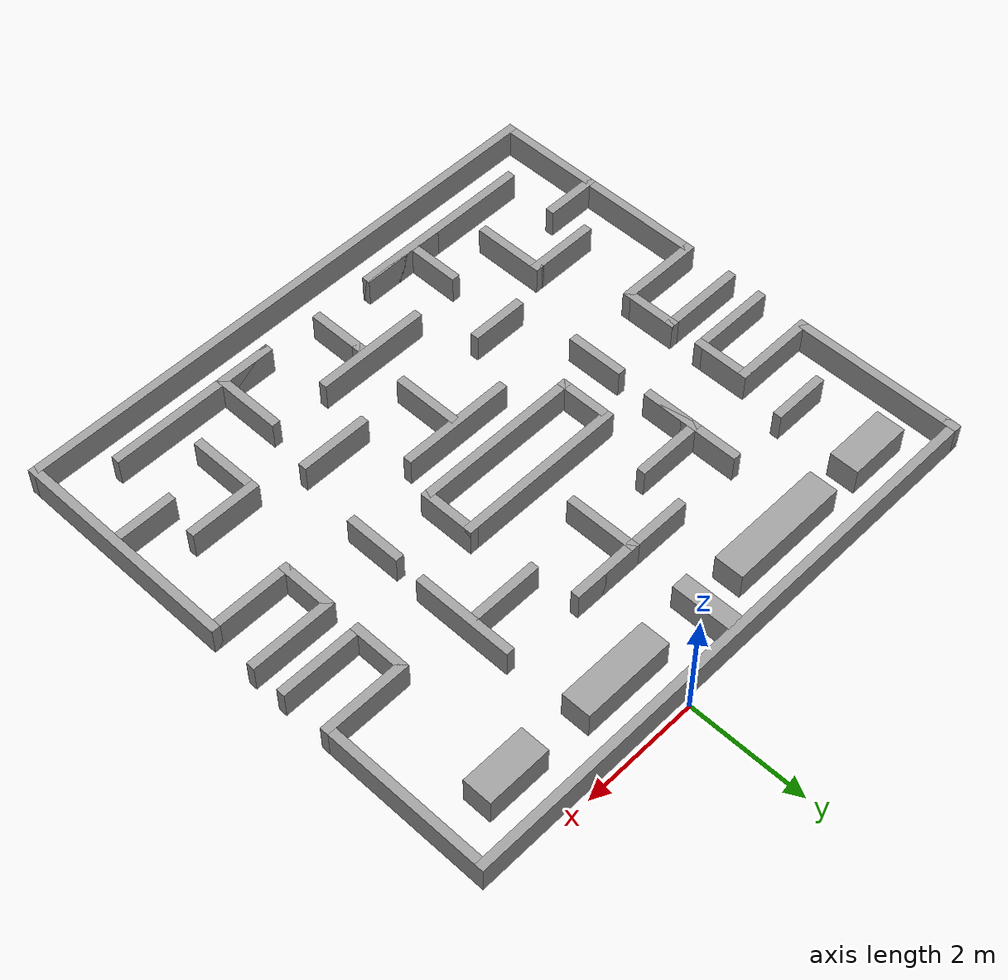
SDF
<?xml version='1.0'?>
<sdf version='1.6'>
  <model name='maze'>
    <pose frame=''>-1.235 -4.76 0 0 -0 0</pose>
    <link name='Wall_10'>
      <collision name='Wall_10_Collision'>
        <geometry>
          <box>
            <size>1.5 0.15 0.5</size>
          </box>
        </geometry>
      </collision>
      <visual name='Wall_10_Visual'>
        <geometry>
          <box>
            <size>1.5 0.15 0.5</size>
          </box>
        </geometry>
        <material>
          <script>
            <uri>file://media/materials/scripts/gazebo.material</uri>
            <name>Gazebo/Grey</name>
          </script>
          <ambient>1 1 1 1</ambient>
        </material>
        <meta>
          <layer>0</layer>
        </meta>
      </visual>
      <pose frame=''>4.25 1.65 0 0 -0 3.14159</pose>
    </link>
    <link name='Wall_100'>
      <collision name='Wall_100_Collision'>
        <geometry>
          <box>
            <size>1.25 0.15 0.5</size>
          </box>
        </geometry>
      </collision>
      <visual name='Wall_100_Visual'>
        <geometry>
          <box>
            <size>1.25 0.15 0.5</size>
          </box>
        </geometry>
        <material>
          <script>
            <uri>file://media/materials/scripts/gazebo.material</uri>
            <name>Gazebo/Grey</name>
          </script>
          <ambient>1 1 1 1</ambient>
        </material>
        <meta>
          <layer>0</layer>
        </meta>
      </visual>
      <pose frame=''>3.49245 -2.0558 0 0 -0 3.14159</pose>
    </link>
    <link name='Wall_104'>
      <collision name='Wall_104_Collision'>
        <geometry>
          <box>
            <size>1.25 0.15 0.5</size>
          </box>
        </geometry>
      </collision>
      <visual name='Wall_104_Visual'>
        <geometry>
          <box>
            <size>1.25 0.15 0.5</size>
          </box>
        </geometry>
        <material>
          <script>
            <uri>file://media/materials/scripts/gazebo.material</uri>
            <name>Gazebo/Grey</name>
          </script>
          <ambient>1 1 1 1</ambient>
        </material>
        <meta>
          <layer>0</layer>
        </meta>
      </visual>
      <pose frame=''>2.94245 -2.6058 0 0 -0 -1.5708</pose>
    </link>
    <link name='Wall_106'>
      <collision name='Wall_106_Collision'>
        <geometry>
          <box>
            <size>1 0.15 0.5</size>
          </box>
        </geometry>
      </collision>
      <visual name='Wall_106_Visual'>
        <geometry>
          <box>
            <size>1 0.15 0.5</size>
          </box>
        </geometry>
        <material>
          <script>
            <uri>file://media/materials/scripts/gazebo.material</uri>
            <name>Gazebo/Grey</name>
          </script>
          <ambient>1 1 1 1</ambient>
        </material>
        <meta>
          <layer>0</layer>
        </meta>
      </visual>
      <pose frame=''>-1.79082 -1.75694 0 0 -0 0</pose>
    </link>
    <link name='Wall_108'>
      <collision name='Wall_108_Collision'>
        <geometry>
          <box>
            <size>1.25 0.15 0.5</size>
          </box>
        </geometry>
      </collision>
      <visual name='Wall_108_Visual'>
        <geometry>
          <box>
            <size>1.25 0.15 0.5</size>
          </box>
        </geometry>
        <material>
          <script>
            <uri>file://media/materials/scripts/gazebo.material</uri>
            <name>Gazebo/Grey</name>
          </script>
          <ambient>1 1 1 1</ambient>
        </material>
        <meta>
          <layer>0</layer>
        </meta>
      </visual>
      <pose frame=''>1.58637 -1.79211 0 0 -0 0</pose>
    </link>
    <link name='Wall_11'>
      <collision name='Wall_11_Collision'>
        <geometry>
          <box>
            <size>1 0.15 0.5</size>
          </box>
        </geometry>
      </collision>
      <visual name='Wall_11_Visual'>
        <geometry>
          <box>
            <size>1 0.15 0.5</size>
          </box>
        </geometry>
        <material>
          <script>
            <uri>file://media/materials/scripts/gazebo.material</uri>
            <name>Gazebo/Grey</name>
          </script>
          <ambient>1 1 1 1</ambient>
        </material>
        <meta>
          <layer>0</layer>
        </meta>
      </visual>
      <pose frame=''>3.575 1.225 0 0 -0 -1.5708</pose>
    </link>
    <link name='Wall_110'>
      <collision name='Wall_110_Collision'>
        <geometry>
          <box>
            <size>3.25 0.15 0.5</size>
          </box>
        </geometry>
      </collision>
      <visual name='Wall_110_Visual'>
        <geometry>
          <box>
            <size>3.25 0.15 0.5</size>
          </box>
        </geometry>
        <material>
          <script>
            <uri>file://media/materials/scripts/gazebo.material</uri>
            <name>Gazebo/Grey</name>
          </script>
          <ambient>1 1 1 1</ambient>
        </material>
        <meta>
          <layer>0</layer>
        </meta>
      </visual>
      <pose frame=''>-2.56439 -3.761 0 0 -0 0</pose>
    </link>
    <link name='Wall_111'>
      <collision name='Wall_111_Collision'>
        <geometry>
          <box>
            <size>1.5 0.15 0.5</size>
          </box>
        </geometry>
      </collision>
      <visual name='Wall_111_Visual'>
        <geometry>
          <box>
            <size>1.5 0.15 0.5</size>
          </box>
        </geometry>
        <material>
          <script>
            <uri>file://media/materials/scripts/gazebo.material</uri>
            <name>Gazebo/Grey</name>
          </script>
          <ambient>1 1 1 1</ambient>
        </material>
        <meta>
          <layer>0</layer>
        </meta>
      </visual>
      <pose frame=''>-1.68939 -3.761 0 0 -0 3.14159</pose>
    </link>
    <link name='Wall_113'>
      <collision name='Wall_113_Collision'>
        <geometry>
          <box>
            <size>1 0.15 0.5</size>
          </box>
        </geometry>
      </collision>
      <visual name='Wall_113_Visual'>
        <geometry>
          <box>
            <size>1 0.15 0.5</size>
          </box>
        </geometry>
        <material>
          <script>
            <uri>file://media/materials/scripts/gazebo.material</uri>
            <name>Gazebo/Grey</name>
          </script>
          <ambient>1 1 1 1</ambient>
        </material>
        <meta>
          <layer>0</layer>
        </meta>
      </visual>
      <pose frame=''>-1.95213 -3.30084 0 0 -0 1.5708</pose>
    </link>
    <link name='Wall_115'>
      <collision name='Wall_115_Collision'>
        <geometry>
          <box>
            <size>2 0.15 0.5</size>
          </box>
        </geometry>
      </collision>
      <visual name='Wall_115_Visual'>
        <geometry>
          <box>
            <size>2 0.15 0.5</size>
          </box>
        </geometry>
        <material>
          <script>
            <uri>file://media/materials/scripts/gazebo.material</uri>
            <name>Gazebo/Grey</name>
          </script>
          <ambient>1 1 1 1</ambient>
        </material>
        <meta>
          <layer>0</layer>
        </meta>
      </visual>
      <pose frame=''>-0.042679 -2.70623 0 0 -0 0</pose>
    </link>
    <link name='Wall_118'>
      <collision name='Wall_118_Collision'>
        <geometry>
          <box>
            <size>1 0.15 0.5</size>
          </box>
        </geometry>
      </collision>
      <visual name='Wall_118_Visual'>
        <geometry>
          <box>
            <size>1 0.15 0.5</size>
          </box>
        </geometry>
        <material>
          <script>
            <uri>file://media/materials/scripts/gazebo.material</uri>
            <name>Gazebo/Grey</name>
          </script>
          <ambient>1 1 1 1</ambient>
        </material>
        <meta>
          <layer>0</layer>
        </meta>
      </visual>
      <pose frame=''>0.067929 -3.29949 0 0 -0 1.5708</pose>
    </link>
    <link name='Wall_12'>
      <collision name='Wall_12_Collision'>
        <geometry>
          <box>
            <size>1.5 0.15 0.5</size>
          </box>
        </geometry>
      </collision>
      <visual name='Wall_12_Visual'>
        <geometry>
          <box>
            <size>1.5 0.15 0.5</size>
          </box>
        </geometry>
        <material>
          <script>
            <uri>file://media/materials/scripts/gazebo.material</uri>
            <name>Gazebo/Grey</name>
          </script>
          <ambient>1 1 1 1</ambient>
        </material>
        <meta>
          <layer>0</layer>
        </meta>
      </visual>
      <pose frame=''>4.25 0.8 0 0 -0 0</pose>
    </link>
    <link name='Wall_120'>
      <collision name='Wall_120_Collision'>
        <geometry>
          <box>
            <size>0.15 0.15 0.5</size>
          </box>
        </geometry>
      </collision>
      <visual name='Wall_120_Visual'>
        <geometry>
          <box>
            <size>0.15 0.15 0.5</size>
          </box>
        </geometry>
        <material>
          <script>
            <uri>file://media/materials/scripts/gazebo.material</uri>
            <name>Gazebo/Grey</name>
          </script>
          <ambient>1 1 1 1</ambient>
        </material>
        <meta>
          <layer>0</layer>
        </meta>
      </visual>
      <pose frame=''>0.067929 -2.85691 0 0 -0 0</pose>
    </link>
    <link name='Wall_121'>
      <collision name='Wall_121_Collision'>
        <geometry>
          <box>
            <size>0.15 0.15 0.5</size>
          </box>
        </geometry>
      </collision>
      <visual name='Wall_121_Visual'>
        <geometry>
          <box>
            <size>0.15 0.15 0.5</size>
          </box>
        </geometry>
        <material>
          <script>
            <uri>file://media/materials/scripts/gazebo.material</uri>
            <name>Gazebo/Grey</name>
          </script>
          <ambient>1 1 1 1</ambient>
        </material>
        <meta>
          <layer>0</layer>
        </meta>
      </visual>
      <pose frame=''>0.067929 -2.85691 0 0 -0 0</pose>
    </link>
    <link name='Wall_123'>
      <collision name='Wall_123_Collision'>
        <geometry>
          <box>
            <size>1.25 0.15 0.5</size>
          </box>
        </geometry>
      </collision>
      <visual name='Wall_123_Visual'>
        <geometry>
          <box>
            <size>1.25 0.15 0.5</size>
          </box>
        </geometry>
        <material>
          <script>
            <uri>file://media/materials/scripts/gazebo.material</uri>
            <name>Gazebo/Grey</name>
          </script>
          <ambient>1 1 1 1</ambient>
        </material>
        <meta>
          <layer>0</layer>
        </meta>
      </visual>
      <pose frame=''>1.93292 -3.27381 0 0 -0 -1.5708</pose>
    </link>
    <link name='Wall_124'>
      <collision name='Wall_124_Collision'>
        <geometry>
          <box>
            <size>1 0.15 0.5</size>
          </box>
        </geometry>
      </collision>
      <visual name='Wall_124_Visual'>
        <geometry>
          <box>
            <size>1 0.15 0.5</size>
          </box>
        </geometry>
        <material>
          <script>
            <uri>file://media/materials/scripts/gazebo.material</uri>
            <name>Gazebo/Grey</name>
          </script>
          <ambient>1 1 1 1</ambient>
        </material>
        <meta>
          <layer>0</layer>
        </meta>
      </visual>
      <pose frame=''>1.50792 -3.82381 0 0 -0 3.14159</pose>
    </link>
    <link name='Wall_125'>
      <collision name='Wall_125_Collision'>
        <geometry>
          <box>
            <size>3 0.15 0.5</size>
          </box>
        </geometry>
      </collision>
      <visual name='Wall_125_Visual'>
        <geometry>
          <box>
            <size>3 0.15 0.5</size>
          </box>
        </geometry>
        <material>
          <script>
            <uri>file://media/materials/scripts/gazebo.material</uri>
            <name>Gazebo/Grey</name>
          </script>
          <ambient>1 1 1 1</ambient>
        </material>
        <meta>
          <layer>0</layer>
        </meta>
      </visual>
      <pose frame=''>2.50792 -3.82381 0 0 -0 0</pose>
    </link>
    <link name='Wall_127'>
      <collision name='Wall_127_Collision'>
        <geometry>
          <box>
            <size>1.6 0.5 0.5</size>
          </box>
        </geometry>
      </collision>
      <visual name='Wall_127_Visual'>
        <geometry>
          <box>
            <size>1.6 0.5 0.5</size>
          </box>
        </geometry>
        <material>
          <script>
            <uri>file://media/materials/scripts/gazebo.material</uri>
            <name>Gazebo/Grey</name>
          </script>
          <ambient>1 1 1 1</ambient>
        </material>
        <meta>
          <layer>0</layer>
        </meta>
      </visual>
      <pose frame=''>1.6036 3.75626 0 0 -0 3.14159</pose>
    </link>
    <link name='Wall_129'>
      <collision name='Wall_129_Collision'>
        <geometry>
          <box>
            <size>1.1 0.5 0.5</size>
          </box>
        </geometry>
      </collision>
      <visual name='Wall_129_Visual'>
        <geometry>
          <box>
            <size>1.1 0.5 0.5</size>
          </box>
        </geometry>
        <material>
          <script>
            <uri>file://media/materials/scripts/gazebo.material</uri>
            <name>Gazebo/Grey</name>
          </script>
          <ambient>1 1 1 1</ambient>
        </material>
        <meta>
          <layer>0</layer>
        </meta>
      </visual>
      <pose frame=''>3.69461 3.72056 0 0 -0 0</pose>
    </link>
    <link name='Wall_15'>
      <collision name='Wall_15_Collision'>
        <geometry>
          <box>
            <size>3 0.15 0.5</size>
          </box>
        </geometry>
      </collision>
      <visual name='Wall_15_Visual'>
        <geometry>
          <box>
            <size>3 0.15 0.5</size>
          </box>
        </geometry>
        <material>
          <script>
            <uri>file://media/materials/scripts/gazebo.material</uri>
            <name>Gazebo/Grey</name>
          </script>
          <ambient>1 1 1 1</ambient>
        </material>
        <meta>
          <layer>0</layer>
        </meta>
      </visual>
      <pose frame=''>-4.925 3.075 0 0 -0 -1.5708</pose>
    </link>
    <link name='Wall_16'>
      <collision name='Wall_16_Collision'>
        <geometry>
          <box>
            <size>1.5 0.15 0.5</size>
          </box>
        </geometry>
      </collision>
      <visual name='Wall_16_Visual'>
        <geometry>
          <box>
            <size>1.5 0.15 0.5</size>
          </box>
        </geometry>
        <material>
          <script>
            <uri>file://media/materials/scripts/gazebo.material</uri>
            <name>Gazebo/Grey</name>
          </script>
          <ambient>1 1 1 1</ambient>
        </material>
        <meta>
          <layer>0</layer>
        </meta>
      </visual>
      <pose frame=''>-4.25 1.65 0 0 -0 0</pose>
    </link>
    <link name='Wall_19'>
      <collision name='Wall_19_Collision'>
        <geometry>
          <box>
            <size>1 0.15 0.5</size>
          </box>
        </geometry>
      </collision>
      <visual name='Wall_19_Visual'>
        <geometry>
          <box>
            <size>1 0.15 0.5</size>
          </box>
        </geometry>
        <material>
          <script>
            <uri>file://media/materials/scripts/gazebo.material</uri>
            <name>Gazebo/Grey</name>
          </script>
          <ambient>1 1 1 1</ambient>
        </material>
        <meta>
          <layer>0</layer>
        </meta>
      </visual>
      <pose frame=''>-3.575 1.225 0 0 -0 -1.5708</pose>
    </link>
    <link name='Wall_20'>
      <collision name='Wall_20_Collision'>
        <geometry>
          <box>
            <size>1.5 0.15 0.5</size>
          </box>
        </geometry>
      </collision>
      <visual name='Wall_20_Visual'>
        <geometry>
          <box>
            <size>1.5 0.15 0.5</size>
          </box>
        </geometry>
        <material>
          <script>
            <uri>file://media/materials/scripts/gazebo.material</uri>
            <name>Gazebo/Grey</name>
          </script>
          <ambient>1 1 1 1</ambient>
        </material>
        <meta>
          <layer>0</layer>
        </meta>
      </visual>
      <pose frame=''>-4.25 0.8 0 0 -0 3.14159</pose>
    </link>
    <link name='Wall_23'>
      <collision name='Wall_23_Collision'>
        <geometry>
          <box>
            <size>1.5 0.15 0.5</size>
          </box>
        </geometry>
      </collision>
      <visual name='Wall_23_Visual'>
        <geometry>
          <box>
            <size>1.5 0.15 0.5</size>
          </box>
        </geometry>
        <material>
          <script>
            <uri>file://media/materials/scripts/gazebo.material</uri>
            <name>Gazebo/Grey</name>
          </script>
          <ambient>1 1 1 1</ambient>
        </material>
        <meta>
          <layer>0</layer>
        </meta>
      </visual>
      <pose frame=''>-4.25 0.2 0 0 -0 0</pose>
    </link>
    <link name='Wall_24'>
      <collision name='Wall_24_Collision'>
        <geometry>
          <box>
            <size>1 0.15 0.5</size>
          </box>
        </geometry>
      </collision>
      <visual name='Wall_24_Visual'>
        <geometry>
          <box>
            <size>1 0.15 0.5</size>
          </box>
        </geometry>
        <material>
          <script>
            <uri>file://media/materials/scripts/gazebo.material</uri>
            <name>Gazebo/Grey</name>
          </script>
          <ambient>1 1 1 1</ambient>
        </material>
        <meta>
          <layer>0</layer>
        </meta>
      </visual>
      <pose frame=''>-3.575 -0.225 0 0 -0 -1.5708</pose>
    </link>
    <link name='Wall_25'>
      <collision name='Wall_25_Collision'>
        <geometry>
          <box>
            <size>1.5 0.15 0.5</size>
          </box>
        </geometry>
      </collision>
      <visual name='Wall_25_Visual'>
        <geometry>
          <box>
            <size>1.5 0.15 0.5</size>
          </box>
        </geometry>
        <material>
          <script>
            <uri>file://media/materials/scripts/gazebo.material</uri>
            <name>Gazebo/Grey</name>
          </script>
          <ambient>1 1 1 1</ambient>
        </material>
        <meta>
          <layer>0</layer>
        </meta>
      </visual>
      <pose frame=''>-4.25 -0.65 0 0 -0 3.14159</pose>
    </link>
    <link name='Wall_26'>
      <collision name='Wall_26_Collision'>
        <geometry>
          <box>
            <size>4 0.15 0.5</size>
          </box>
        </geometry>
      </collision>
      <visual name='Wall_26_Visual'>
        <geometry>
          <box>
            <size>4 0.15 0.5</size>
          </box>
        </geometry>
        <material>
          <script>
            <uri>file://media/materials/scripts/gazebo.material</uri>
            <name>Gazebo/Grey</name>
          </script>
          <ambient>1 1 1 1</ambient>
        </material>
        <meta>
          <layer>0</layer>
        </meta>
      </visual>
      <pose frame=''>-4.925 -2.575 0 0 -0 -1.5708</pose>
    </link>
    <link name='Wall_29'>
      <collision name='Wall_29_Collision'>
        <geometry>
          <box>
            <size>1.5 0.15 0.5</size>
          </box>
        </geometry>
      </collision>
      <visual name='Wall_29_Visual'>
        <geometry>
          <box>
            <size>1.5 0.15 0.5</size>
          </box>
        </geometry>
        <material>
          <script>
            <uri>file://media/materials/scripts/gazebo.material</uri>
            <name>Gazebo/Grey</name>
          </script>
          <ambient>1 1 1 1</ambient>
        </material>
        <meta>
          <layer>0</layer>
        </meta>
      </visual>
      <pose frame=''>4.25 0.2 0 0 -0 3.14159</pose>
    </link>
    <link name='Wall_30'>
      <collision name='Wall_30_Collision'>
        <geometry>
          <box>
            <size>1 0.15 0.5</size>
          </box>
        </geometry>
      </collision>
      <visual name='Wall_30_Visual'>
        <geometry>
          <box>
            <size>1 0.15 0.5</size>
          </box>
        </geometry>
        <material>
          <script>
            <uri>file://media/materials/scripts/gazebo.material</uri>
            <name>Gazebo/Grey</name>
          </script>
          <ambient>1 1 1 1</ambient>
        </material>
        <meta>
          <layer>0</layer>
        </meta>
      </visual>
      <pose frame=''>3.575 -0.225 0 0 -0 -1.5708</pose>
    </link>
    <link name='Wall_31'>
      <collision name='Wall_31_Collision'>
        <geometry>
          <box>
            <size>1.5 0.15 0.5</size>
          </box>
        </geometry>
      </collision>
      <visual name='Wall_31_Visual'>
        <geometry>
          <box>
            <size>1.5 0.15 0.5</size>
          </box>
        </geometry>
        <material>
          <script>
            <uri>file://media/materials/scripts/gazebo.material</uri>
            <name>Gazebo/Grey</name>
          </script>
          <ambient>1 1 1 1</ambient>
        </material>
        <meta>
          <layer>0</layer>
        </meta>
      </visual>
      <pose frame=''>4.25 -0.65 0 0 -0 0</pose>
    </link>
    <link name='Wall_32'>
      <collision name='Wall_32_Collision'>
        <geometry>
          <box>
            <size>4 0.15 0.5</size>
          </box>
        </geometry>
      </collision>
      <visual name='Wall_32_Visual'>
        <geometry>
          <box>
            <size>4 0.15 0.5</size>
          </box>
        </geometry>
        <material>
          <script>
            <uri>file://media/materials/scripts/gazebo.material</uri>
            <name>Gazebo/Grey</name>
          </script>
          <ambient>1 1 1 1</ambient>
        </material>
        <meta>
          <layer>0</layer>
        </meta>
      </visual>
      <pose frame=''>4.925 -2.575 0 0 -0 -1.5708</pose>
    </link>
    <link name='Wall_33'>
      <collision name='Wall_33_Collision'>
        <geometry>
          <box>
            <size>10 0.15 0.5</size>
          </box>
        </geometry>
      </collision>
      <visual name='Wall_33_Visual'>
        <geometry>
          <box>
            <size>10 0.15 0.5</size>
          </box>
        </geometry>
        <material>
          <script>
            <uri>file://media/materials/scripts/gazebo.material</uri>
            <name>Gazebo/Grey</name>
          </script>
          <ambient>1 1 1 1</ambient>
        </material>
        <meta>
          <layer>0</layer>
        </meta>
      </visual>
      <pose frame=''>-0 -4.5 0 0 -0 3.14159</pose>
    </link>
    <link name='Wall_36'>
      <collision name='Wall_36_Collision'>
        <geometry>
          <box>
            <size>1.15 0.3 0.5</size>
          </box>
        </geometry>
      </collision>
      <visual name='Wall_36_Visual'>
        <geometry>
          <box>
            <size>1.15 0.3 0.5</size>
          </box>
        </geometry>
        <material>
          <script>
            <uri>file://media/materials/scripts/gazebo.material</uri>
            <name>Gazebo/Grey</name>
          </script>
          <ambient>1 1 1 1</ambient>
        </material>
        <meta>
          <layer>0</layer>
        </meta>
      </visual>
      <pose frame=''>-0.075 3.992 0 0 -0 -1.5708</pose>
    </link>
    <link name='Wall_49'>
      <collision name='Wall_49_Collision'>
        <geometry>
          <box>
            <size>0.75 0.15 0.5</size>
          </box>
        </geometry>
      </collision>
      <visual name='Wall_49_Visual'>
        <geometry>
          <box>
            <size>0.75 0.15 0.5</size>
          </box>
        </geometry>
        <material>
          <script>
            <uri>file://media/materials/scripts/gazebo.material</uri>
            <name>Gazebo/Grey</name>
          </script>
          <ambient>1 1 1 1</ambient>
        </material>
        <meta>
          <layer>0</layer>
        </meta>
      </visual>
      <pose frame=''>-4.925 4.2 0 0 -0 -1.5708</pose>
    </link>
    <link name='Wall_51'>
      <collision name='Wall_51_Collision'>
        <geometry>
          <box>
            <size>1.1 0.5 0.5</size>
          </box>
        </geometry>
      </collision>
      <visual name='Wall_51_Visual'>
        <geometry>
          <box>
            <size>1.1 0.5 0.5</size>
          </box>
        </geometry>
        <material>
          <script>
            <uri>file://media/materials/scripts/gazebo.material</uri>
            <name>Gazebo/Grey</name>
          </script>
          <ambient>1 1 1 1</ambient>
        </material>
        <meta>
          <layer>0</layer>
        </meta>
      </visual>
      <pose frame=''>-3.81917 3.77135 0 0 -0 0</pose>
    </link>
    <link name='Wall_53'>
      <collision name='Wall_53_Collision'>
        <geometry>
          <box>
            <size>2.1 0.5 0.5</size>
          </box>
        </geometry>
      </collision>
      <visual name='Wall_53_Visual'>
        <geometry>
          <box>
            <size>2.1 0.5 0.5</size>
          </box>
        </geometry>
        <material>
          <script>
            <uri>file://media/materials/scripts/gazebo.material</uri>
            <name>Gazebo/Grey</name>
          </script>
          <ambient>1 1 1 1</ambient>
        </material>
        <meta>
          <layer>0</layer>
        </meta>
      </visual>
      <pose frame=''>-1.76454 3.76381 0 0 -0 0</pose>
    </link>
    <link name='Wall_55'>
      <collision name='Wall_55_Collision'>
        <geometry>
          <box>
            <size>1 0.15 0.5</size>
          </box>
        </geometry>
      </collision>
      <visual name='Wall_55_Visual'>
        <geometry>
          <box>
            <size>1 0.15 0.5</size>
          </box>
        </geometry>
        <material>
          <script>
            <uri>file://media/materials/scripts/gazebo.material</uri>
            <name>Gazebo/Grey</name>
          </script>
          <ambient>1 1 1 1</ambient>
        </material>
        <meta>
          <layer>0</layer>
        </meta>
      </visual>
      <pose frame=''>-3.7875 2.51183 0 0 -0 3.14159</pose>
    </link>
    <link name='Wall_57'>
      <collision name='Wall_57_Collision'>
        <geometry>
          <box>
            <size>1.75 0.15 0.5</size>
          </box>
        </geometry>
      </collision>
      <visual name='Wall_57_Visual'>
        <geometry>
          <box>
            <size>1.75 0.15 0.5</size>
          </box>
        </geometry>
        <material>
          <script>
            <uri>file://media/materials/scripts/gazebo.material</uri>
            <name>Gazebo/Grey</name>
          </script>
          <ambient>1 1 1 1</ambient>
        </material>
        <meta>
          <layer>0</layer>
        </meta>
      </visual>
      <pose frame=''>-2.29464 1.71788 0 0 -0 -1.5708</pose>
    </link>
    <link name='Wall_58'>
      <collision name='Wall_58_Collision'>
        <geometry>
          <box>
            <size>1 0.15 0.5</size>
          </box>
        </geometry>
      </collision>
      <visual name='Wall_58_Visual'>
        <geometry>
          <box>
            <size>1 0.15 0.5</size>
          </box>
        </geometry>
        <material>
          <script>
            <uri>file://media/materials/scripts/gazebo.material</uri>
            <name>Gazebo/Grey</name>
          </script>
          <ambient>1 1 1 1</ambient>
        </material>
        <meta>
          <layer>0</layer>
        </meta>
      </visual>
      <pose frame=''>-2.29464 1.34288 0 0 -0 1.5708</pose>
    </link>
    <link name='Wall_59'>
      <collision name='Wall_59_Collision'>
        <geometry>
          <box>
            <size>1.25 0.15 0.5</size>
          </box>
        </geometry>
      </collision>
      <visual name='Wall_59_Visual'>
        <geometry>
          <box>
            <size>1.25 0.15 0.5</size>
          </box>
        </geometry>
        <material>
          <script>
            <uri>file://media/materials/scripts/gazebo.material</uri>
            <name>Gazebo/Grey</name>
          </script>
          <ambient>1 1 1 1</ambient>
        </material>
        <meta>
          <layer>0</layer>
        </meta>
      </visual>
      <pose frame=''>-1.74464 1.76788 0 0 -0 0</pose>
    </link>
    <link name='Wall_65'>
      <collision name='Wall_65_Collision'>
        <geometry>
          <box>
            <size>1.25 0.15 0.5</size>
          </box>
        </geometry>
      </collision>
      <visual name='Wall_65_Visual'>
        <geometry>
          <box>
            <size>1.25 0.15 0.5</size>
          </box>
        </geometry>
        <material>
          <script>
            <uri>file://media/materials/scripts/gazebo.material</uri>
            <name>Gazebo/Grey</name>
          </script>
          <ambient>1 1 1 1</ambient>
        </material>
        <meta>
          <layer>0</layer>
        </meta>
      </visual>
      <pose frame=''>1.7478 1.79998 0 0 -0 0</pose>
    </link>
    <link name='Wall_69'>
      <collision name='Wall_69_Collision'>
        <geometry>
          <box>
            <size>1.75 0.15 0.5</size>
          </box>
        </geometry>
      </collision>
      <visual name='Wall_69_Visual'>
        <geometry>
          <box>
            <size>1.75 0.15 0.5</size>
          </box>
        </geometry>
        <material>
          <script>
            <uri>file://media/materials/scripts/gazebo.material</uri>
            <name>Gazebo/Grey</name>
          </script>
          <ambient>1 1 1 1</ambient>
        </material>
        <meta>
          <layer>0</layer>
        </meta>
      </visual>
      <pose frame=''>2.39412 1.6779 0 0 -0 -1.5708</pose>
    </link>
    <link name='Wall_74'>
      <collision name='Wall_74_Collision'>
        <geometry>
          <box>
            <size>2.25 0.15 0.5</size>
          </box>
        </geometry>
      </collision>
      <visual name='Wall_74_Visual'>
        <geometry>
          <box>
            <size>2.25 0.15 0.5</size>
          </box>
        </geometry>
        <material>
          <script>
            <uri>file://media/materials/scripts/gazebo.material</uri>
            <name>Gazebo/Grey</name>
          </script>
          <ambient>1 1 1 1</ambient>
        </material>
        <meta>
          <layer>0</layer>
        </meta>
      </visual>
      <pose frame=''>-0.011937 2.54436 0 0 -0 0</pose>
    </link>
    <link name='Wall_75'>
      <collision name='Wall_75_Collision'>
        <geometry>
          <box>
            <size>1.25 0.15 0.5</size>
          </box>
        </geometry>
      </collision>
      <visual name='Wall_75_Visual'>
        <geometry>
          <box>
            <size>1.25 0.15 0.5</size>
          </box>
        </geometry>
        <material>
          <script>
            <uri>file://media/materials/scripts/gazebo.material</uri>
            <name>Gazebo/Grey</name>
          </script>
          <ambient>1 1 1 1</ambient>
        </material>
        <meta>
          <layer>0</layer>
        </meta>
      </visual>
      <pose frame=''>0.488063 2.54436 0 0 -0 3.14159</pose>
    </link>
    <link name='Wall_76'>
      <collision name='Wall_76_Collision'>
        <geometry>
          <box>
            <size>1.25 0.15 0.5</size>
          </box>
        </geometry>
      </collision>
      <visual name='Wall_76_Visual'>
        <geometry>
          <box>
            <size>1.25 0.15 0.5</size>
          </box>
        </geometry>
        <material>
          <script>
            <uri>file://media/materials/scripts/gazebo.material</uri>
            <name>Gazebo/Grey</name>
          </script>
          <ambient>1 1 1 1</ambient>
        </material>
        <meta>
          <layer>0</layer>
        </meta>
      </visual>
      <pose frame=''>-0.061937 1.99436 0 0 -0 -1.5708</pose>
    </link>
    <link name='Wall_78'>
      <collision name='Wall_78_Collision'>
        <geometry>
          <box>
            <size>1 0.15 0.5</size>
          </box>
        </geometry>
      </collision>
      <visual name='Wall_78_Visual'>
        <geometry>
          <box>
            <size>1 0.15 0.5</size>
          </box>
        </geometry>
        <material>
          <script>
            <uri>file://media/materials/scripts/gazebo.material</uri>
            <name>Gazebo/Grey</name>
          </script>
          <ambient>1 1 1 1</ambient>
        </material>
        <meta>
          <layer>0</layer>
        </meta>
      </visual>
      <pose frame=''>-1.55376 0.284991 0 0 -0 -1.5708</pose>
    </link>
    <link name='Wall_79'>
      <collision name='Wall_79_Collision'>
        <geometry>
          <box>
            <size>3 0.15 0.5</size>
          </box>
        </geometry>
      </collision>
      <visual name='Wall_79_Visual'>
        <geometry>
          <box>
            <size>3 0.15 0.5</size>
          </box>
        </geometry>
        <material>
          <script>
            <uri>file://media/materials/scripts/gazebo.material</uri>
            <name>Gazebo/Grey</name>
          </script>
          <ambient>1 1 1 1</ambient>
        </material>
        <meta>
          <layer>0</layer>
        </meta>
      </visual>
      <pose frame=''>-0.128762 -0.140008 0 0 -0 0</pose>
    </link>
    <link name='Wall_8'>
      <collision name='Wall_8_Collision'>
        <geometry>
          <box>
            <size>10 0.15 0.5</size>
          </box>
        </geometry>
      </collision>
      <visual name='Wall_8_Visual'>
        <geometry>
          <box>
            <size>10 0.15 0.5</size>
          </box>
        </geometry>
        <material>
          <script>
            <uri>file://media/materials/scripts/gazebo.material</uri>
            <name>Gazebo/Grey</name>
          </script>
          <ambient>1 1 1 1</ambient>
        </material>
        <meta>
          <layer>0</layer>
        </meta>
      </visual>
      <pose frame=''>-0 4.5 0 0 -0 0</pose>
    </link>
    <link name='Wall_80'>
      <collision name='Wall_80_Collision'>
        <geometry>
          <box>
            <size>1 0.15 0.5</size>
          </box>
        </geometry>
      </collision>
      <visual name='Wall_80_Visual'>
        <geometry>
          <box>
            <size>1 0.15 0.5</size>
          </box>
        </geometry>
        <material>
          <script>
            <uri>file://media/materials/scripts/gazebo.material</uri>
            <name>Gazebo/Grey</name>
          </script>
          <ambient>1 1 1 1</ambient>
        </material>
        <meta>
          <layer>0</layer>
        </meta>
      </visual>
      <pose frame=''>1.29624 0.284991 0 0 -0 1.5708</pose>
    </link>
    <link name='Wall_81'>
      <collision name='Wall_81_Collision'>
        <geometry>
          <box>
            <size>3 0.15 0.5</size>
          </box>
        </geometry>
      </collision>
      <visual name='Wall_81_Visual'>
        <geometry>
          <box>
            <size>3 0.15 0.5</size>
          </box>
        </geometry>
        <material>
          <script>
            <uri>file://media/materials/scripts/gazebo.material</uri>
            <name>Gazebo/Grey</name>
          </script>
          <ambient>1 1 1 1</ambient>
        </material>
        <meta>
          <layer>0</layer>
        </meta>
      </visual>
      <pose frame=''>-0.128762 0.709992 0 0 -0 3.14159</pose>
    </link>
    <link name='Wall_83'>
      <collision name='Wall_83_Collision'>
        <geometry>
          <box>
            <size>1 0.15 0.5</size>
          </box>
        </geometry>
      </collision>
      <visual name='Wall_83_Visual'>
        <geometry>
          <box>
            <size>1 0.15 0.5</size>
          </box>
        </geometry>
        <material>
          <script>
            <uri>file://media/materials/scripts/gazebo.material</uri>
            <name>Gazebo/Grey</name>
          </script>
          <ambient>1 1 1 1</ambient>
        </material>
        <meta>
          <layer>0</layer>
        </meta>
      </visual>
      <pose frame=''>-2.32473 -0.180248 0 0 -0 -1.5708</pose>
    </link>
    <link name='Wall_85'>
      <collision name='Wall_85_Collision'>
        <geometry>
          <box>
            <size>1 0.15 0.5</size>
          </box>
        </geometry>
      </collision>
      <visual name='Wall_85_Visual'>
        <geometry>
          <box>
            <size>1 0.15 0.5</size>
          </box>
        </geometry>
        <material>
          <script>
            <uri>file://media/materials/scripts/gazebo.material</uri>
            <name>Gazebo/Grey</name>
          </script>
          <ambient>1 1 1 1</ambient>
        </material>
        <meta>
          <layer>0</layer>
        </meta>
      </visual>
      <pose frame=''>2.35425 -0.127077 0 0 -0 -1.5708</pose>
    </link>
    <link name='Wall_87'>
      <collision name='Wall_87_Collision'>
        <geometry>
          <box>
            <size>2 0.15 0.5</size>
          </box>
        </geometry>
      </collision>
      <visual name='Wall_87_Visual'>
        <geometry>
          <box>
            <size>2 0.15 0.5</size>
          </box>
        </geometry>
        <material>
          <script>
            <uri>file://media/materials/scripts/gazebo.material</uri>
            <name>Gazebo/Grey</name>
          </script>
          <ambient>1 1 1 1</ambient>
        </material>
        <meta>
          <layer>0</layer>
        </meta>
      </visual>
      <pose frame=''>0.075743 -0.792066 0 0 -0 0</pose>
    </link>
    <link name='Wall_89'>
      <collision name='Wall_89_Collision'>
        <geometry>
          <box>
            <size>1.25 0.15 0.5</size>
          </box>
        </geometry>
      </collision>
      <visual name='Wall_89_Visual'>
        <geometry>
          <box>
            <size>1.25 0.15 0.5</size>
          </box>
        </geometry>
        <material>
          <script>
            <uri>file://media/materials/scripts/gazebo.material</uri>
            <name>Gazebo/Grey</name>
          </script>
          <ambient>1 1 1 1</ambient>
        </material>
        <meta>
          <layer>0</layer>
        </meta>
      </visual>
      <pose frame=''>0.067929 -1.34207 0 0 -0 -1.5708</pose>
    </link>
    <link name='Wall_9'>
      <collision name='Wall_9_Collision'>
        <geometry>
          <box>
            <size>3 0.15 0.5</size>
          </box>
        </geometry>
      </collision>
      <visual name='Wall_9_Visual'>
        <geometry>
          <box>
            <size>3 0.15 0.5</size>
          </box>
        </geometry>
        <material>
          <script>
            <uri>file://media/materials/scripts/gazebo.material</uri>
            <name>Gazebo/Grey</name>
          </script>
          <ambient>1 1 1 1</ambient>
        </material>
        <meta>
          <layer>0</layer>
        </meta>
      </visual>
      <pose frame=''>4.925 3.075 0 0 -0 -1.5708</pose>
    </link>
    <link name='Wall_91'>
      <collision name='Wall_91_Collision'>
        <geometry>
          <box>
            <size>1 0.15 0.5</size>
          </box>
        </geometry>
      </collision>
      <visual name='Wall_91_Visual'>
        <geometry>
          <box>
            <size>1 0.15 0.5</size>
          </box>
        </geometry>
        <material>
          <script>
            <uri>file://media/materials/scripts/gazebo.material</uri>
            <name>Gazebo/Grey</name>
          </script>
          <ambient>1 1 1 1</ambient>
        </material>
        <meta>
          <layer>0</layer>
        </meta>
      </visual>
      <pose frame=''>-4.49804 -2.74139 0 0 -0 0</pose>
    </link>
    <link name='Wall_93'>
      <collision name='Wall_93_Collision'>
        <geometry>
          <box>
            <size>1 0.15 0.5</size>
          </box>
        </geometry>
      </collision>
      <visual name='Wall_93_Visual'>
        <geometry>
          <box>
            <size>1 0.15 0.5</size>
          </box>
        </geometry>
        <material>
          <script>
            <uri>file://media/materials/scripts/gazebo.material</uri>
            <name>Gazebo/Grey</name>
          </script>
          <ambient>1 1 1 1</ambient>
        </material>
        <meta>
          <layer>0</layer>
        </meta>
      </visual>
      <pose frame=''>4.35196 -2.74139 0 0 -0 3.14159</pose>
    </link>
    <link name='Wall_97'>
      <collision name='Wall_97_Collision'>
        <geometry>
          <box>
            <size>1.25 0.15 0.5</size>
          </box>
        </geometry>
      </collision>
      <visual name='Wall_97_Visual'>
        <geometry>
          <box>
            <size>1.25 0.15 0.5</size>
          </box>
        </geometry>
        <material>
          <script>
            <uri>file://media/materials/scripts/gazebo.material</uri>
            <name>Gazebo/Grey</name>
          </script>
          <ambient>1 1 1 1</ambient>
        </material>
        <meta>
          <layer>0</layer>
        </meta>
      </visual>
      <pose frame=''>-3.54681 -2.07337 0 0 -0 0</pose>
    </link>
    <link name='Wall_98'>
      <collision name='Wall_98_Collision'>
        <geometry>
          <box>
            <size>1.25 0.15 0.5</size>
          </box>
        </geometry>
      </collision>
      <visual name='Wall_98_Visual'>
        <geometry>
          <box>
            <size>1.25 0.15 0.5</size>
          </box>
        </geometry>
        <material>
          <script>
            <uri>file://media/materials/scripts/gazebo.material</uri>
            <name>Gazebo/Grey</name>
          </script>
          <ambient>1 1 1 1</ambient>
        </material>
        <meta>
          <layer>0</layer>
        </meta>
      </visual>
      <pose frame=''>-2.99681 -2.62337 0 0 -0 -1.5708</pose>
    </link>
    <static>1</static>
  </model>
</sdf>
